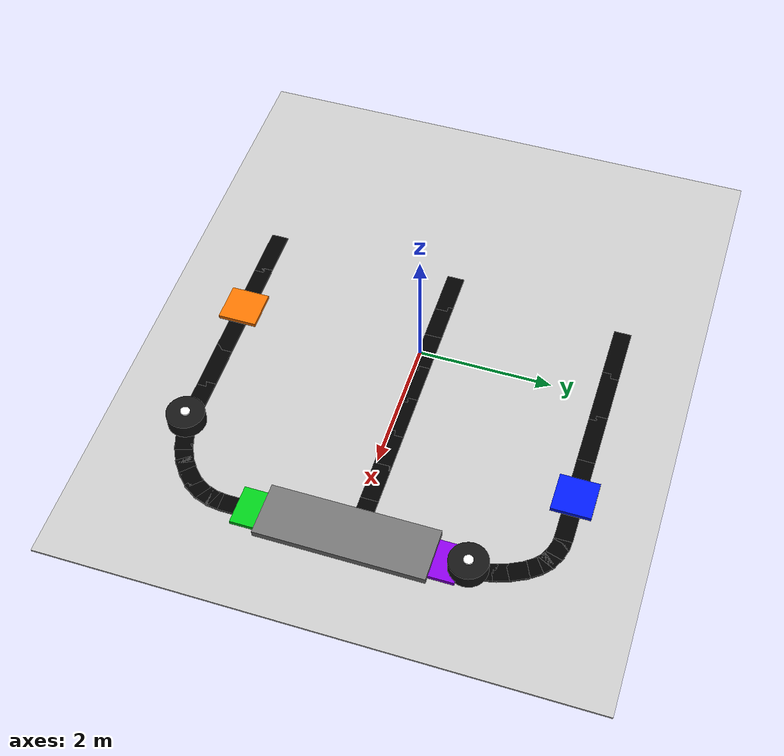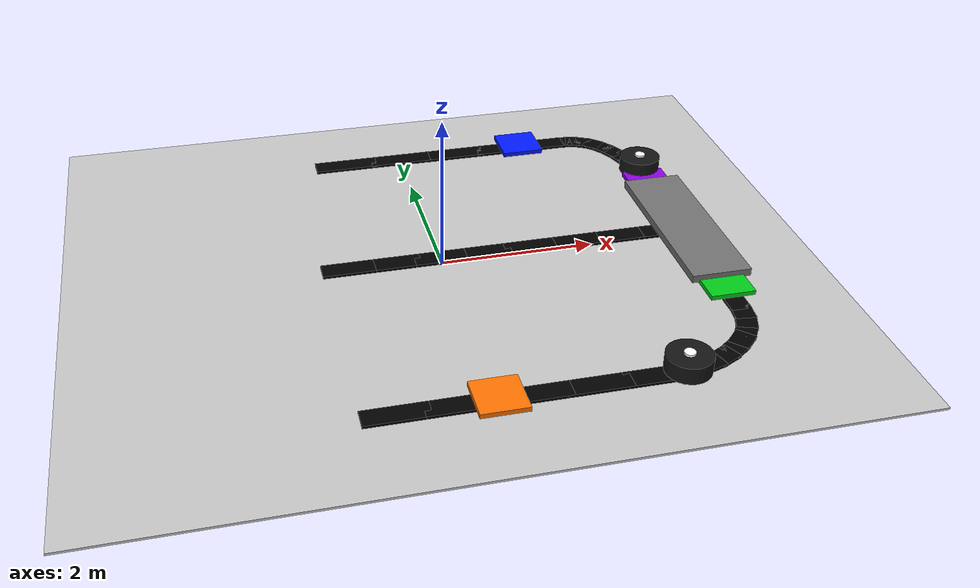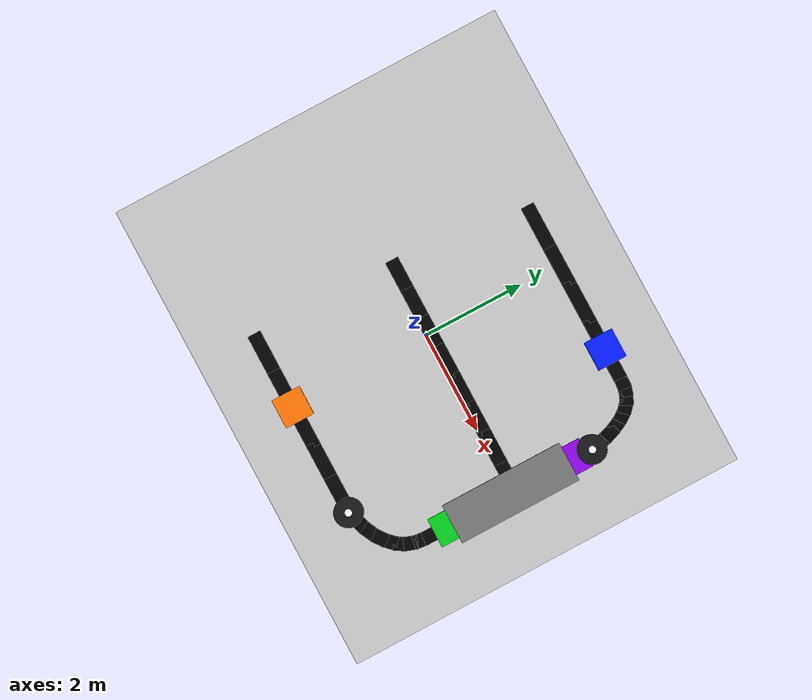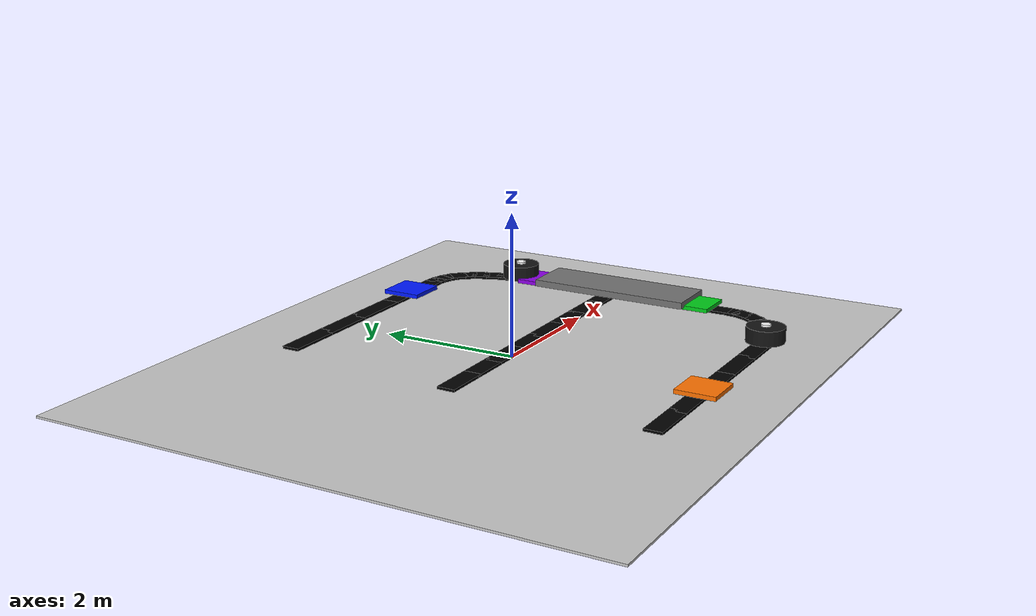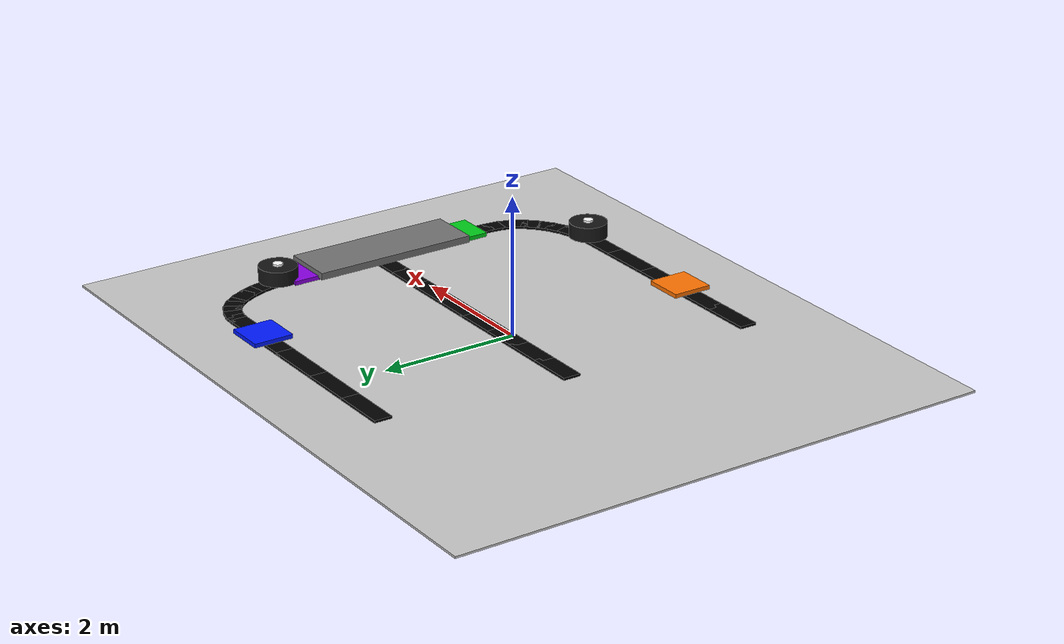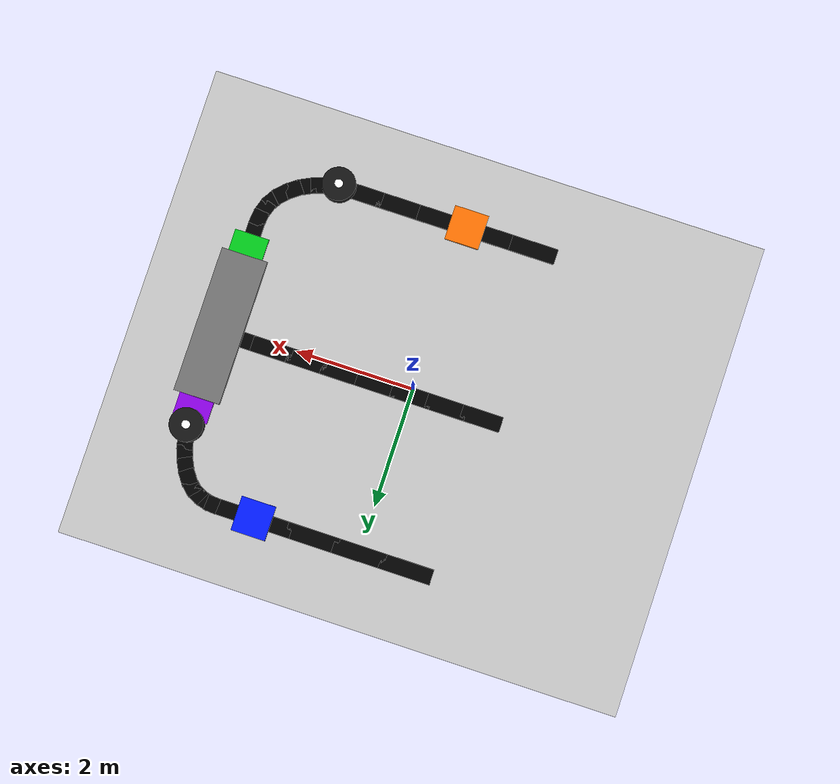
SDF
<sdf version="1.6">
 <world name="agv_factory_v4_smooth_intersection">
  <include><uri>model://sun</uri></include>
  <model name="factory_floor">
   <static>true</static>
   <pose>0.0000 0.0000 -0.0150 0 0 0.0000</pose>
   <link name="link">
    <collision name="collision"><geometry><box><size>9.5000 8.0000 0.0300</size></box></geometry></collision>
    <visual name="visual">
     <geometry><box><size>9.5000 8.0000 0.0300</size></box></geometry>
     <material><ambient>0.78 0.78 0.78 1</ambient><diffuse>0.78 0.78 0.78 1</diffuse></material>
    </visual>
   </link>
  </model>
  <model name="line_top_03">
   <static>true</static>
   <pose>-0.8000 2.8000 0.0175 0 0 0.0000</pose>
   <link name="link">
    <collision name="collision"><geometry><box><size>0.8800 0.2600 0.0350</size></box></geometry></collision>
    <visual name="visual">
     <geometry><box><size>0.8800 0.2600 0.0350</size></box></geometry>
     <material><ambient>0 0 0 1</ambient><diffuse>0 0 0 1</diffuse></material>
    </visual>
   </link>
  </model>
  <model name="line_top_04">
   <static>true</static>
   <pose>0.0000 2.8000 0.0175 0 0 0.0000</pose>
   <link name="link">
    <collision name="collision"><geometry><box><size>0.8800 0.2600 0.0350</size></box></geometry></collision>
    <visual name="visual">
     <geometry><box><size>0.8800 0.2600 0.0350</size></box></geometry>
     <material><ambient>0 0 0 1</ambient><diffuse>0 0 0 1</diffuse></material>
    </visual>
   </link>
  </model>
  <model name="line_top_05">
   <static>true</static>
   <pose>0.8000 2.8000 0.0175 0 0 0.0000</pose>
   <link name="link">
    <collision name="collision"><geometry><box><size>0.8800 0.2600 0.0350</size></box></geometry></collision>
    <visual name="visual">
     <geometry><box><size>0.8800 0.2600 0.0350</size></box></geometry>
     <material><ambient>0 0 0 1</ambient><diffuse>0 0 0 1</diffuse></material>
    </visual>
   </link>
  </model>
  <model name="line_top_06">
   <static>true</static>
   <pose>1.5000 2.8000 0.0175 0 0 0.0000</pose>
   <link name="link">
    <collision name="collision"><geometry><box><size>0.6800 0.2600 0.0350</size></box></geometry></collision>
    <visual name="visual">
     <geometry><box><size>0.6800 0.2600 0.0350</size></box></geometry>
     <material><ambient>0 0 0 1</ambient><diffuse>0 0 0 1</diffuse></material>
    </visual>
   </link>
  </model>
  <model name="line_top_07">
   <static>true</static>
   <pose>2.1250 2.8000 0.0175 0 0 0.0000</pose>
   <link name="link">
    <collision name="collision"><geometry><box><size>0.7300 0.2600 0.0350</size></box></geometry></collision>
    <visual name="visual">
     <geometry><box><size>0.7300 0.2600 0.0350</size></box></geometry>
     <material><ambient>0 0 0 1</ambient><diffuse>0 0 0 1</diffuse></material>
    </visual>
   </link>
  </model>
  <model name="curve_top_right_01">
   <static>true</static>
   <pose>2.5150 2.7950 0.0175 0 0 -0.0768</pose>
   <link name="link">
    <collision name="collision"><geometry><box><size>0.2104 0.2600 0.0350</size></box></geometry></collision>
    <visual name="visual">
     <geometry><box><size>0.2104 0.2600 0.0350</size></box></geometry>
     <material><ambient>0 0 0 1</ambient><diffuse>0 0 0 1</diffuse></material>
    </visual>
   </link>
  </model>
  <model name="curve_top_right_02">
   <static>true</static>
   <pose>2.6500 2.7700 0.0175 0 0 -0.2783</pose>
   <link name="link">
    <collision name="collision"><geometry><box><size>0.2256 0.2600 0.0350</size></box></geometry></collision>
    <visual name="visual">
     <geometry><box><size>0.2256 0.2600 0.0350</size></box></geometry>
     <material><ambient>0 0 0 1</ambient><diffuse>0 0 0 1</diffuse></material>
    </visual>
   </link>
  </model>
  <model name="curve_top_right_03">
   <static>true</static>
   <pose>2.7900 2.7150 0.0175 0 0 -0.4636</pose>
   <link name="link">
    <collision name="collision"><geometry><box><size>0.2365 0.2600 0.0350</size></box></geometry></collision>
    <visual name="visual">
     <geometry><box><size>0.2365 0.2600 0.0350</size></box></geometry>
     <material><ambient>0 0 0 1</ambient><diffuse>0 0 0 1</diffuse></material>
    </visual>
   </link>
  </model>
  <model name="curve_top_right_04">
   <static>true</static>
   <pose>2.9200 2.6250 0.0175 0 0 -0.7419</pose>
   <link name="link">
    <collision name="collision"><geometry><box><size>0.2428 0.2600 0.0350</size></box></geometry></collision>
    <visual name="visual">
     <geometry><box><size>0.2428 0.2600 0.0350</size></box></geometry>
     <material><ambient>0 0 0 1</ambient><diffuse>0 0 0 1</diffuse></material>
    </visual>
   </link>
  </model>
  <model name="curve_top_right_05">
   <static>true</static>
   <pose>3.0300 2.5000 0.0175 0 0 -0.9505</pose>
   <link name="link">
    <collision name="collision"><geometry><box><size>0.2520 0.2600 0.0350</size></box></geometry></collision>
    <visual name="visual">
     <geometry><box><size>0.2520 0.2600 0.0350</size></box></geometry>
     <material><ambient>0 0 0 1</ambient><diffuse>0 0 0 1</diffuse></material>
    </visual>
   </link>
  </model>
  <model name="curve_top_right_06">
   <static>true</static>
   <pose>3.1250 2.3400 0.0175 0 0 -1.1071</pose>
   <link name="link">
    <collision name="collision"><geometry><box><size>0.2812 0.2600 0.0350</size></box></geometry></collision>
    <visual name="visual">
     <geometry><box><size>0.2812 0.2600 0.0350</size></box></geometry>
     <material><ambient>0 0 0 1</ambient><diffuse>0 0 0 1</diffuse></material>
    </visual>
   </link>
  </model>
  <model name="curve_top_right_07">
   <static>true</static>
   <pose>3.2050 2.1500 0.0175 0 0 -1.2341</pose>
   <link name="link">
    <collision name="collision"><geometry><box><size>0.2919 0.2600 0.0350</size></box></geometry></collision>
    <visual name="visual">
     <geometry><box><size>0.2919 0.2600 0.0350</size></box></geometry>
     <material><ambient>0 0 0 1</ambient><diffuse>0 0 0 1</diffuse></material>
    </visual>
   </link>
  </model>
  <model name="curve_top_right_08">
   <static>true</static>
   <pose>3.2600 1.9550 0.0175 0 0 -1.3633</pose>
   <link name="link">
    <collision name="collision"><geometry><box><size>0.2742 0.2600 0.0350</size></box></geometry></collision>
    <visual name="visual">
     <geometry><box><size>0.2742 0.2600 0.0350</size></box></geometry>
     <material><ambient>0 0 0 1</ambient><diffuse>0 0 0 1</diffuse></material>
    </visual>
   </link>
  </model>
  <model name="curve_top_right_09">
   <static>true</static>
   <pose>3.2900 1.7800 0.0175 0 0 -1.4464</pose>
   <link name="link">
    <collision name="collision"><geometry><box><size>0.2412 0.2600 0.0350</size></box></geometry></collision>
    <visual name="visual">
     <geometry><box><size>0.2412 0.2600 0.0350</size></box></geometry>
     <material><ambient>0 0 0 1</ambient><diffuse>0 0 0 1</diffuse></material>
    </visual>
   </link>
  </model>
  <model name="line_right_01">
   <static>true</static>
   <pose>3.3000 1.5000 0.0175 0 0 -1.5708</pose>
   <link name="link">
    <collision name="collision"><geometry><box><size>0.4800 0.2600 0.0350</size></box></geometry></collision>
    <visual name="visual">
     <geometry><box><size>0.4800 0.2600 0.0350</size></box></geometry>
     <material><ambient>0 0 0 1</ambient><diffuse>0 0 0 1</diffuse></material>
    </visual>
   </link>
  </model>
  <model name="line_right_02">
   <static>true</static>
   <pose>3.3000 1.0500 0.0175 0 0 -1.5708</pose>
   <link name="link">
    <collision name="collision"><geometry><box><size>0.5800 0.2600 0.0350</size></box></geometry></collision>
    <visual name="visual">
     <geometry><box><size>0.5800 0.2600 0.0350</size></box></geometry>
     <material><ambient>0 0 0 1</ambient><diffuse>0 0 0 1</diffuse></material>
    </visual>
   </link>
  </model>
  <model name="line_right_03">
   <static>true</static>
   <pose>3.3000 0.5500 0.0175 0 0 -1.5708</pose>
   <link name="link">
    <collision name="collision"><geometry><box><size>0.5800 0.2600 0.0350</size></box></geometry></collision>
    <visual name="visual">
     <geometry><box><size>0.5800 0.2600 0.0350</size></box></geometry>
     <material><ambient>0 0 0 1</ambient><diffuse>0 0 0 1</diffuse></material>
    </visual>
   </link>
  </model>
  <model name="line_right_04">
   <static>true</static>
   <pose>3.3000 0.1500 0.0175 0 0 -1.5708</pose>
   <link name="link">
    <collision name="collision"><geometry><box><size>0.3800 0.2600 0.0350</size></box></geometry></collision>
    <visual name="visual">
     <geometry><box><size>0.3800 0.2600 0.0350</size></box></geometry>
     <material><ambient>0 0 0 1</ambient><diffuse>0 0 0 1</diffuse></material>
    </visual>
   </link>
  </model>
  <model name="line_right_05">
   <static>true</static>
   <pose>3.3000 -0.1500 0.0175 0 0 -1.5708</pose>
   <link name="link">
    <collision name="collision"><geometry><box><size>0.3800 0.2600 0.0350</size></box></geometry></collision>
    <visual name="visual">
     <geometry><box><size>0.3800 0.2600 0.0350</size></box></geometry>
     <material><ambient>0 0 0 1</ambient><diffuse>0 0 0 1</diffuse></material>
    </visual>
   </link>
  </model>
  <model name="line_right_06">
   <static>true</static>
   <pose>3.3000 -0.5500 0.0175 0 0 -1.5708</pose>
   <link name="link">
    <collision name="collision"><geometry><box><size>0.5800 0.2600 0.0350</size></box></geometry></collision>
    <visual name="visual">
     <geometry><box><size>0.5800 0.2600 0.0350</size></box></geometry>
     <material><ambient>0 0 0 1</ambient><diffuse>0 0 0 1</diffuse></material>
    </visual>
   </link>
  </model>
  <model name="line_right_07">
   <static>true</static>
   <pose>3.3000 -1.0500 0.0175 0 0 -1.5708</pose>
   <link name="link">
    <collision name="collision"><geometry><box><size>0.5800 0.2600 0.0350</size></box></geometry></collision>
    <visual name="visual">
     <geometry><box><size>0.5800 0.2600 0.0350</size></box></geometry>
     <material><ambient>0 0 0 1</ambient><diffuse>0 0 0 1</diffuse></material>
    </visual>
   </link>
  </model>
  <model name="line_right_08">
   <static>true</static>
   <pose>3.3000 -1.5500 0.0175 0 0 -1.5708</pose>
   <link name="link">
    <collision name="collision"><geometry><box><size>0.5800 0.2600 0.0350</size></box></geometry></collision>
    <visual name="visual">
     <geometry><box><size>0.5800 0.2600 0.0350</size></box></geometry>
     <material><ambient>0 0 0 1</ambient><diffuse>0 0 0 1</diffuse></material>
    </visual>
   </link>
  </model>
  <model name="curve_bottom_right_01">
   <static>true</static>
   <pose>3.2900 -1.8900 0.0175 0 0 -1.6815</pose>
   <link name="link">
    <collision name="collision"><geometry><box><size>0.2611 0.2600 0.0350</size></box></geometry></collision>
    <visual name="visual">
     <geometry><box><size>0.2611 0.2600 0.0350</size></box></geometry>
     <material><ambient>0 0 0 1</ambient><diffuse>0 0 0 1</diffuse></material>
    </visual>
   </link>
  </model>
  <model name="curve_bottom_right_02">
   <static>true</static>
   <pose>3.2500 -2.0700 0.0175 0 0 -1.8925</pose>
   <link name="link">
    <collision name="collision"><geometry><box><size>0.2697 0.2600 0.0350</size></box></geometry></collision>
    <visual name="visual">
     <geometry><box><size>0.2697 0.2600 0.0350</size></box></geometry>
     <material><ambient>0 0 0 1</ambient><diffuse>0 0 0 1</diffuse></material>
    </visual>
   </link>
  </model>
  <model name="curve_bottom_right_03">
   <static>true</static>
   <pose>3.1700 -2.2400 0.0175 0 0 -2.1294</pose>
   <link name="link">
    <collision name="collision"><geometry><box><size>0.2687 0.2600 0.0350</size></box></geometry></collision>
    <visual name="visual">
     <geometry><box><size>0.2687 0.2600 0.0350</size></box></geometry>
     <material><ambient>0 0 0 1</ambient><diffuse>0 0 0 1</diffuse></material>
    </visual>
   </link>
  </model>
  <model name="curve_bottom_right_04">
   <static>true</static>
   <pose>3.0500 -2.3900 0.0175 0 0 -2.3562</pose>
   <link name="link">
    <collision name="collision"><geometry><box><size>0.2780 0.2600 0.0350</size></box></geometry></collision>
    <visual name="visual">
     <geometry><box><size>0.2780 0.2600 0.0350</size></box></geometry>
     <material><ambient>0 0 0 1</ambient><diffuse>0 0 0 1</diffuse></material>
    </visual>
   </link>
  </model>
  <model name="curve_bottom_right_05">
   <static>true</static>
   <pose>2.9000 -2.5200 0.0175 0 0 -2.4981</pose>
   <link name="link">
    <collision name="collision"><geometry><box><size>0.2800 0.2600 0.0350</size></box></geometry></collision>
    <visual name="visual">
     <geometry><box><size>0.2800 0.2600 0.0350</size></box></geometry>
     <material><ambient>0 0 0 1</ambient><diffuse>0 0 0 1</diffuse></material>
    </visual>
   </link>
  </model>
  <model name="curve_bottom_right_06">
   <static>true</static>
   <pose>2.7200 -2.6300 0.0175 0 0 -2.6779</pose>
   <link name="link">
    <collision name="collision"><geometry><box><size>0.3036 0.2600 0.0350</size></box></geometry></collision>
    <visual name="visual">
     <geometry><box><size>0.3036 0.2600 0.0350</size></box></geometry>
     <material><ambient>0 0 0 1</ambient><diffuse>0 0 0 1</diffuse></material>
    </visual>
   </link>
  </model>
  <model name="curve_bottom_right_07">
   <static>true</static>
   <pose>2.5100 -2.7150 0.0175 0 0 -2.8335</pose>
   <link name="link">
    <collision name="collision"><geometry><box><size>0.3109 0.2600 0.0350</size></box></geometry></collision>
    <visual name="visual">
     <geometry><box><size>0.3109 0.2600 0.0350</size></box></geometry>
     <material><ambient>0 0 0 1</ambient><diffuse>0 0 0 1</diffuse></material>
    </visual>
   </link>
  </model>
  <model name="curve_bottom_right_08">
   <static>true</static>
   <pose>2.3000 -2.7750 0.0175 0 0 -2.8966</pose>
   <link name="link">
    <collision name="collision"><geometry><box><size>0.2862 0.2600 0.0350</size></box></geometry></collision>
    <visual name="visual">
     <geometry><box><size>0.2862 0.2600 0.0350</size></box></geometry>
     <material><ambient>0 0 0 1</ambient><diffuse>0 0 0 1</diffuse></material>
    </visual>
   </link>
  </model>
  <model name="line_bottom_01">
   <static>true</static>
   <pose>1.8500 -2.8000 0.0175 0 0 3.1416</pose>
   <link name="link">
    <collision name="collision"><geometry><box><size>0.7800 0.2600 0.0350</size></box></geometry></collision>
    <visual name="visual">
     <geometry><box><size>0.7800 0.2600 0.0350</size></box></geometry>
     <material><ambient>0 0 0 1</ambient><diffuse>0 0 0 1</diffuse></material>
    </visual>
   </link>
  </model>
  <model name="line_bottom_02">
   <static>true</static>
   <pose>1.1500 -2.8000 0.0175 0 0 3.1416</pose>
   <link name="link">
    <collision name="collision"><geometry><box><size>0.7800 0.2600 0.0350</size></box></geometry></collision>
    <visual name="visual">
     <geometry><box><size>0.7800 0.2600 0.0350</size></box></geometry>
     <material><ambient>0 0 0 1</ambient><diffuse>0 0 0 1</diffuse></material>
    </visual>
   </link>
  </model>
  <model name="line_bottom_03">
   <static>true</static>
   <pose>0.4000 -2.8000 0.0175 0 0 3.1416</pose>
   <link name="link">
    <collision name="collision"><geometry><box><size>0.8800 0.2600 0.0350</size></box></geometry></collision>
    <visual name="visual">
     <geometry><box><size>0.8800 0.2600 0.0350</size></box></geometry>
     <material><ambient>0 0 0 1</ambient><diffuse>0 0 0 1</diffuse></material>
    </visual>
   </link>
  </model>
  <model name="line_bottom_04">
   <static>true</static>
   <pose>-0.4000 -2.8000 0.0175 0 0 3.1416</pose>
   <link name="link">
    <collision name="collision"><geometry><box><size>0.8800 0.2600 0.0350</size></box></geometry></collision>
    <visual name="visual">
     <geometry><box><size>0.8800 0.2600 0.0350</size></box></geometry>
     <material><ambient>0 0 0 1</ambient><diffuse>0 0 0 1</diffuse></material>
    </visual>
   </link>
  </model>
  <model name="line_bottom_05">
   <static>true</static>
   <pose>-1.1500 -2.8000 0.0175 0 0 3.1416</pose>
   <link name="link">
    <collision name="collision"><geometry><box><size>0.7800 0.2600 0.0350</size></box></geometry></collision>
    <visual name="visual">
     <geometry><box><size>0.7800 0.2600 0.0350</size></box></geometry>
     <material><ambient>0 0 0 1</ambient><diffuse>0 0 0 1</diffuse></material>
    </visual>
   </link>
  </model>
  <model name="line_center_cross_04">
   <static>true</static>
   <pose>-1.2000 0.1000 0.0175 0 0 0.0000</pose>
   <link name="link">
    <collision name="collision"><geometry><box><size>0.6800 0.2600 0.0350</size></box></geometry></collision>
    <visual name="visual">
     <geometry><box><size>0.6800 0.2600 0.0350</size></box></geometry>
     <material><ambient>0 0 0 1</ambient><diffuse>0 0 0 1</diffuse></material>
    </visual>
   </link>
  </model>
  <model name="line_center_cross_05">
   <static>true</static>
   <pose>-0.6000 0.1000 0.0175 0 0 0.0000</pose>
   <link name="link">
    <collision name="collision"><geometry><box><size>0.6800 0.2600 0.0350</size></box></geometry></collision>
    <visual name="visual">
     <geometry><box><size>0.6800 0.2600 0.0350</size></box></geometry>
     <material><ambient>0 0 0 1</ambient><diffuse>0 0 0 1</diffuse></material>
    </visual>
   </link>
  </model>
  <model name="line_center_cross_06">
   <static>true</static>
   <pose>0.0000 0.1000 0.0175 0 0 0.0000</pose>
   <link name="link">
    <collision name="collision"><geometry><box><size>0.6800 0.2600 0.0350</size></box></geometry></collision>
    <visual name="visual">
     <geometry><box><size>0.6800 0.2600 0.0350</size></box></geometry>
     <material><ambient>0 0 0 1</ambient><diffuse>0 0 0 1</diffuse></material>
    </visual>
   </link>
  </model>
  <model name="line_center_cross_07">
   <static>true</static>
   <pose>0.6000 0.1000 0.0175 0 0 0.0000</pose>
   <link name="link">
    <collision name="collision"><geometry><box><size>0.6800 0.2600 0.0350</size></box></geometry></collision>
    <visual name="visual">
     <geometry><box><size>0.6800 0.2600 0.0350</size></box></geometry>
     <material><ambient>0 0 0 1</ambient><diffuse>0 0 0 1</diffuse></material>
    </visual>
   </link>
  </model>
  <model name="line_center_cross_08">
   <static>true</static>
   <pose>1.2000 0.1000 0.0175 0 0 0.0000</pose>
   <link name="link">
    <collision name="collision"><geometry><box><size>0.6800 0.2600 0.0350</size></box></geometry></collision>
    <visual name="visual">
     <geometry><box><size>0.6800 0.2600 0.0350</size></box></geometry>
     <material><ambient>0 0 0 1</ambient><diffuse>0 0 0 1</diffuse></material>
    </visual>
   </link>
  </model>
  <model name="line_center_cross_09">
   <static>true</static>
   <pose>1.8000 0.1000 0.0175 0 0 0.0000</pose>
   <link name="link">
    <collision name="collision"><geometry><box><size>0.6800 0.2600 0.0350</size></box></geometry></collision>
    <visual name="visual">
     <geometry><box><size>0.6800 0.2600 0.0350</size></box></geometry>
     <material><ambient>0 0 0 1</ambient><diffuse>0 0 0 1</diffuse></material>
    </visual>
   </link>
  </model>
  <model name="line_center_cross_10">
   <static>true</static>
   <pose>2.4000 0.1000 0.0175 0 0 0.0000</pose>
   <link name="link">
    <collision name="collision"><geometry><box><size>0.6800 0.2600 0.0350</size></box></geometry></collision>
    <visual name="visual">
     <geometry><box><size>0.6800 0.2600 0.0350</size></box></geometry>
     <material><ambient>0 0 0 1</ambient><diffuse>0 0 0 1</diffuse></material>
    </visual>
   </link>
  </model>
  <model name="line_center_cross_11">
   <static>true</static>
   <pose>3.0000 0.1000 0.0175 0 0 0.0000</pose>
   <link name="link">
    <collision name="collision"><geometry><box><size>0.6800 0.2600 0.0350</size></box></geometry></collision>
    <visual name="visual">
     <geometry><box><size>0.6800 0.2600 0.0350</size></box></geometry>
     <material><ambient>0 0 0 1</ambient><diffuse>0 0 0 1</diffuse></material>
    </visual>
   </link>
  </model>
  <model name="right_center_joint">
   <static>true</static>
   <pose>3.3000 0.1000 0.0205 0 0 0</pose>
   <link name="link">
    <collision name="collision">
     <geometry><cylinder><radius>0.1800</radius><length>0.0350</length></cylinder></geometry>
    </collision>
    <visual name="visual">
     <geometry><cylinder><radius>0.1800</radius><length>0.0350</length></cylinder></geometry>
     <material><ambient>0.0 0.0 0.0 1</ambient><diffuse>0.0 0.0 0.0 1</diffuse></material>
    </visual>
   </link>
  </model>
  <model name="blue_square">
   <static>true</static>
   <pose>1.8000 2.8000 0.0650 0 0 0.0000</pose>
   <link name="link">
    <collision name="collision"><geometry><box><size>0.5800 0.5800 0.0600</size></box></geometry></collision>
    <visual name="visual">
     <geometry><box><size>0.5800 0.5800 0.0600</size></box></geometry>
     <material><ambient>0.0 0.1 1.0 1</ambient><diffuse>0.0 0.1 1.0 1</diffuse></material>
    </visual>
   </link>
  </model>
  <model name="orange_square">
   <static>true</static>
   <pose>0.0000 -2.8000 0.0650 0 0 0.0000</pose>
   <link name="link">
    <collision name="collision"><geometry><box><size>0.5800 0.5800 0.0600</size></box></geometry></collision>
    <visual name="visual">
     <geometry><box><size>0.5800 0.5800 0.0600</size></box></geometry>
     <material><ambient>1.0 0.45 0.0 1</ambient><diffuse>1.0 0.45 0.0 1</diffuse></material>
    </visual>
   </link>
  </model>
  <model name="purple_square">
   <static>true</static>
   <pose>3.3000 1.3000 0.0650 0 0 0.0000</pose>
   <link name="link">
    <collision name="collision"><geometry><box><size>0.5800 0.5800 0.0600</size></box></geometry></collision>
    <visual name="visual">
     <geometry><box><size>0.5800 0.5800 0.0600</size></box></geometry>
     <material><ambient>0.55 0.0 0.9 1</ambient><diffuse>0.55 0.0 0.9 1</diffuse></material>
    </visual>
   </link>
  </model>
  <model name="green_square">
   <static>true</static>
   <pose>3.3000 -1.3000 0.0650 0 0 0.0000</pose>
   <link name="link">
    <collision name="collision"><geometry><box><size>0.5800 0.5800 0.0600</size></box></geometry></collision>
    <visual name="visual">
     <geometry><box><size>0.5800 0.5800 0.0600</size></box></geometry>
     <material><ambient>0.0 0.8 0.1 1</ambient><diffuse>0.0 0.8 0.1 1</diffuse></material>
    </visual>
   </link>
  </model>
  <model name="container_area">
   <static>true</static>
   <pose>3.3000 0.0000 0.1150 0 0 0.0000</pose>
   <link name="link">
    <collision name="collision"><geometry><box><size>0.7800 2.4500 0.1000</size></box></geometry></collision>
    <visual name="visual">
     <geometry><box><size>0.7800 2.4500 0.1000</size></box></geometry>
     <material><ambient>0.45 0.45 0.45 1</ambient><diffuse>0.45 0.45 0.45 1</diffuse></material>
    </visual>
   </link>
  </model>
  <model name="AGV01">
   <static>false</static>
   <pose>2.2000 -2.8000 0.1600 0 0 0</pose>
   <link name="link">
    <collision name="collision">
     <geometry><cylinder><radius>0.2800</radius><length>0.2200</length></cylinder></geometry>
    </collision>
    <visual name="visual">
     <geometry><cylinder><radius>0.2800</radius><length>0.2200</length></cylinder></geometry>
     <material><ambient>0.08 0.08 0.08 1</ambient><diffuse>0.08 0.08 0.08 1</diffuse></material>
    </visual>
   </link>
  </model>
  <model name="AGV02">
   <static>false</static>
   <pose>3.3000 1.7000 0.1600 0 0 0</pose>
   <link name="link">
    <collision name="collision">
     <geometry><cylinder><radius>0.2800</radius><length>0.2200</length></cylinder></geometry>
    </collision>
    <visual name="visual">
     <geometry><cylinder><radius>0.2800</radius><length>0.2200</length></cylinder></geometry>
     <material><ambient>0.08 0.08 0.08 1</ambient><diffuse>0.08 0.08 0.08 1</diffuse></material>
    </visual>
   </link>
  </model>
  <model name="AGV01_center_dot">
   <static>false</static>
   <pose>2.2000 -2.8000 0.2850 0 0 0</pose>
   <link name="link">
    <collision name="collision">
     <geometry><cylinder><radius>0.0700</radius><length>0.0300</length></cylinder></geometry>
    </collision>
    <visual name="visual">
     <geometry><cylinder><radius>0.0700</radius><length>0.0300</length></cylinder></geometry>
     <material><ambient>1.0 1.0 1.0 1</ambient><diffuse>1.0 1.0 1.0 1</diffuse></material>
    </visual>
   </link>
  </model>
  <model name="AGV02_center_dot">
   <static>false</static>
   <pose>3.3000 1.7000 0.2850 0 0 0</pose>
   <link name="link">
    <collision name="collision">
     <geometry><cylinder><radius>0.0700</radius><length>0.0300</length></cylinder></geometry>
    </collision>
    <visual name="visual">
     <geometry><cylinder><radius>0.0700</radius><length>0.0300</length></cylinder></geometry>
     <material><ambient>1.0 1.0 1.0 1</ambient><diffuse>1.0 1.0 1.0 1</diffuse></material>
    </visual>
   </link>
  </model>
 </world>
</sdf>
